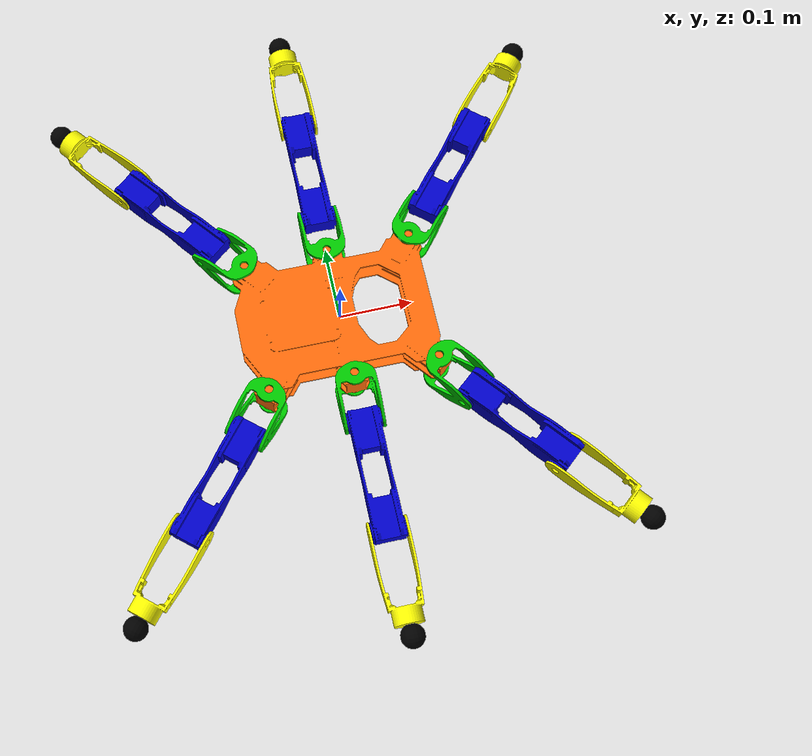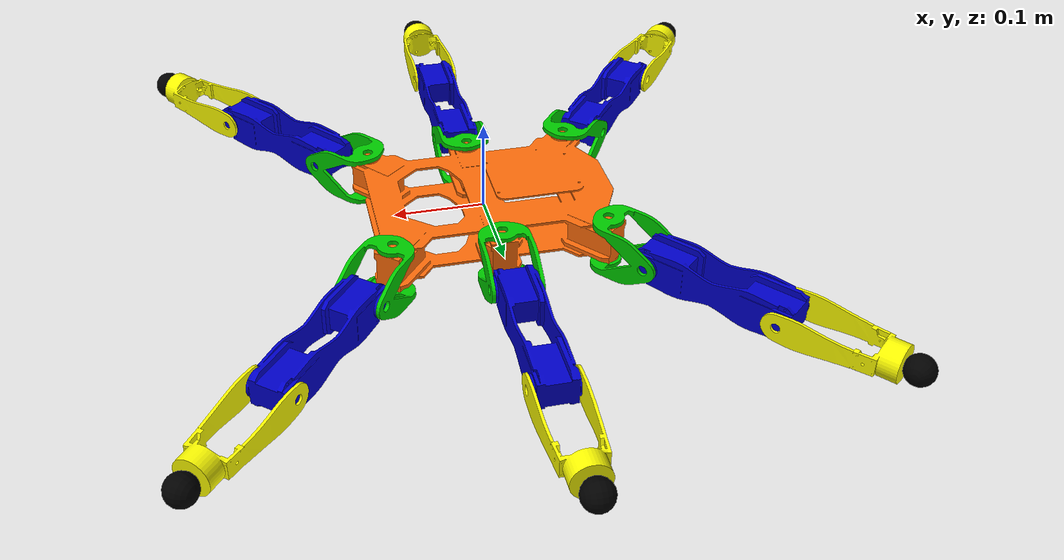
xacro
<?xml version="1.0"?>
<robot xmlns:xacro="http://www.ros.org/wiki/xacro" name="corin">

	<!-- The following included files set up definitions of parts of the robot body -->
	<xacro:include filename="$(find corin_description)/urdfs/common.xacro"/>
	<xacro:include filename="$(find corin_description)/urdfs/materials.xacro"/>
	<!-- Trunk -->
	<xacro:include filename="$(find corin_description)/urdfs/trunk/trunk_model.xacro"/>

	<!-- Legs -->
	<xacro:include filename="$(find corin_description)/urdfs/leg/leg.xacro"/>

	<!-- Sensors -->
	<xacro:include filename="$(find corin_description)/urdfs/sensors/sensors.xacro"/>

	<!-- generic simulator_gazebo plugins for starting mechanism control, ros time -->
	<xacro:include filename="$(find corin_description)/robots/gazebo.xacro"/>

	<!-- Utilise macros to build robot -->

	<!-- body -->
	<xacro:RobotTrunk name="base">
		<origin xyz="0.0 0.0 0.0" rpy="0 0 0"/>
	</xacro:RobotTrunk>

	<xacro:RobotLeg
		name="lf"
		parent="trunk"
		middle_leg="false"
		load_force_sensors="true">
		<origin xyz="${trunk_x/2} ${trunk_y/2} 0" rpy="0 0 ${50*PI/180}"/>
	</xacro:RobotLeg>

	<xacro:RobotLeg
		name="lm"
		parent="trunk"
		middle_leg="true"
		load_force_sensors="false">
		<origin xyz="0 ${trunk_y/2} 0" rpy="0 0 ${PI/2}"/>
	</xacro:RobotLeg>

	<xacro:RobotLeg
		name="lr"
		parent="trunk"
		middle_leg="false"
		load_force_sensors="false">
		<origin xyz="${-trunk_x/2} ${trunk_y/2} 0" rpy="0 0 ${PI/2+40*PI/180}"/>
	</xacro:RobotLeg>

	<xacro:RobotLeg
		name="rf"
		parent="trunk"
		middle_leg="false"
		load_force_sensors="true">
		<origin xyz="${trunk_x/2} ${-trunk_y/2} 0" rpy="0 0 ${-50*PI/180}"/>
	</xacro:RobotLeg>

	<xacro:RobotLeg
		name="rm"
		parent="trunk"
		middle_leg="true"
		load_force_sensors="false">
		<origin xyz="0 ${-trunk_y/2} 0" rpy="0 0 ${-PI/2}"/>
	</xacro:RobotLeg>

	<xacro:RobotLeg
		name="rr"
		parent="trunk"
		middle_leg="false"
		load_force_sensors="false">
		<origin xyz="${-trunk_x/2} ${-trunk_y/2} 0" rpy="0 0 ${-PI/2-40*PI/180}"/>
	</xacro:RobotLeg>

	<!-- Sensors -->

	<xacro:IMU
		parent="trunk"
		imu_name="base_imu"
		imu_topic="base/data"
		imu_service="trunk/service"
		freq_rate="500">
		<origin xyz="0 0 0.0" rpy="0 0 0"/>
	</xacro:IMU>

</robot>

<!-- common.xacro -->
<robot xmlns:xacro="http://www.ros.org/wiki/xacro" name="corin">

	<xacro:property name="PI" value="3.1415926535897931"/>

	<!-- standard distances -->
	<xacro:property name="trunk_x" value="0.23"/> 		<!-- distance between front & back  joints -->
	<xacro:property name="trunk_y" value="0.18"/> 		<!-- distance between left  & right joints -->
	<xacro:property name="trunk_z" value="0.07"/>

	<!--  Joint parameters -->
	<xacro:property name="MX64_damping"   value="0.15" /> 					<!-- real: 0.2 		-->
	<xacro:property name="MX64_effort"    value="2.85" /> 					<!-- real: 2.85 Nm 	-->
	<xacro:property name="MX64_velocity"  value="5.23" />

	<xacro:property name="cox_joint_lim" value="1.00" />	<!-- 57deg -->
	<xacro:property name="cxm_joint_lim" value="0.84" />	<!-- 48deg -->
	<xacro:property name="fem_joint_lim" value="2.22" />	<!-- 127deg -->
	<xacro:property name="tib_joint_lim" value="2.79" />

	<!-- Inertial values -->
	<!-- Trunk  -->
	<xacro:property name="xcom_trunk" value="0.0"/>
	<xacro:property name="ycom_trunk" value="0.0"/>
	<xacro:property name="zcom_trunk" value="0.0"/>
	<xacro:property name="m_trunk" 	  value="1.58"/> <!-- initially 1.5 -->
	<xacro:property name="ixx_trunk"  value="${ (m_trunk/12)*(trunk_y*trunk_y + trunk_z*trunk_z) } "/>
	<xacro:property name="iyy_trunk"  value="${ (m_trunk/12)*(trunk_x*trunk_x + trunk_z*trunk_z) } "/>
	<xacro:property name="izz_trunk"  value="${ (m_trunk/12)*(trunk_y*trunk_y + trunk_x*trunk_x) } "/>
	<xacro:property name="ixy_trunk"  value="0.0"/>
	<xacro:property name="ixz_trunk"  value="0.0"/>
	<xacro:property name="iyz_trunk"  value="0.0"/>

	<!-- Coxa assembly -->
	<xacro:property name="coxa_l"     value="0.06"  />
	<xacro:property name="coxa_w"     value="0.06"  />
	<xacro:property name="coxa_d"     value="0.055" />
	<xacro:property name="coxa_cl"    value="0.03" />
	<xacro:property name="coxa_com_x" value="0.02471"  />
	<xacro:property name="coxa_com_y" value="0"  />
	<xacro:property name="coxa_com_z" value="0"  />
	<xacro:property name="coxa_m"     value="0.0406" />
	<xacro:property name="coxa_i_xx"  value="0.000038"  />
	<xacro:property name="coxa_i_xy"  value="0.0"  />
	<xacro:property name="coxa_i_xz"  value="0.0"  />
	<xacro:property name="coxa_i_yy"  value="0.000038"  />
	<xacro:property name="coxa_i_yz"  value="0.0"  />
	<xacro:property name="coxa_i_zz"  value="0.000040"  />

	<!-- Femur assembly -->
	<xacro:property name="femur_l"     value="0.15" />
	<xacro:property name="femur_w"     value="0.04" />
	<xacro:property name="femur_d"     value="0.04" />
	<xacro:property name="femur_cl"    value="0.15" />
	<xacro:property name="femur_com_x" value="0.075"  />
	<xacro:property name="femur_com_y" value="0"  />
	<xacro:property name="femur_com_z" value="0"  />
	<xacro:property name="femur_m"     value="0.35" />
	<xacro:property name="femur_i_xx"  value="0.000014"  />
	<xacro:property name="femur_i_xy"  value="0"  />
	<xacro:property name="femur_i_xz"  value="0"  />
	<xacro:property name="femur_i_yy"  value="0.000047"  />
	<xacro:property name="femur_i_yz"  value="0"  />
	<xacro:property name="femur_i_zz"  value="0.000051"  />

	<!--  Tibia assembly -->
	<xacro:property name="tibia_l" value="0.134" />
	<xacro:property name="tibia_w" value="0.04" />
	<xacro:property name="tibia_d" value="0.025" />
	<xacro:property name="tibia_cl" value="0.06" />
	<xacro:property name="tibia_com_x" value="0.0887"  	/>
	<xacro:property name="tibia_com_y" value="0"  		/>
	<xacro:property name="tibia_com_z" value="0"  		/>
	<xacro:property name="tibia_m"     value="0.076" 	/>
	<xacro:property name="tibia_i_xx"  value="0.000025" />
	<xacro:property name="tibia_i_xy"  value="0"  		/>
	<xacro:property name="tibia_i_xz"  value="0"  		/>
	<xacro:property name="tibia_i_yy"  value="0.000105" />
	<xacro:property name="tibia_i_yz"  value="0"  		/>
	<xacro:property name="tibia_i_zz"  value="0.000117"  />

	<!-- Foot -->
	<xacro:property name="foot_r" value="0.016"   />
	<xacro:property name="foot_m" value="0.040"   />
	<xacro:property name="foot_I" value="0.000004" />
	<!-- Rectangular box: m*(a^2 + b^2)/12 -->
</robot>

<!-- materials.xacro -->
<robot>

  <material name="black">
    <color rgba="0.0 0.0 0.0 1.0"/>
  </material>

  <material name="blue">
    <color rgba="0.0 0.0 0.8 1.0"/>
  </material>

  <material name="brown">
    <color rgba="${222/255} ${207/255} ${195/255} 1.0"/>
  </material>

  <material name="colli">
    <color rgba="${255/255} ${108/255} ${10/255} 0.7" />
  </material>

  <material name="green">
    <color rgba="0.0 0.8 0.0 1.0"/>
  </material>

  <material name="grey">
    <color rgba="0.2 0.2 0.2 1.0"/>
  </material>

  <material name="grey1">
    <color rgba="${224/255} ${224/255} ${224/255} 1.0"/>
  </material>

  <material name="orange">
    <color rgba="${255/255} ${108/255} ${10/255} 1.0"/>
  </material>

  <material name="red">
    <color rgba="0.8 0.0 0.0 1.0"/>
  </material>

  <material name="transparent">
    <color rgba="0 0 0 0" />
  </material>

  <material name="turquoise">
    <color rgba="0 ${206/255} ${209/255} 1.0" />
  </material>

  <material name="white">
    <color rgba="1.0 1.0 1.0 1.0"/>
  </material>

  <material name="yellow">
    <color rgba="1 1 0 1" />
   </material>

</robot>

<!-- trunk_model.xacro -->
<robot xmlns:xacro="http://www.ros.org/wiki/xacro" name="corin">

	<!-- Things that are needed only for Gazebo (not the physical robot). These include sensor and controller plugin specifications -->
	<xacro:include filename="$(find corin_description)/urdfs/trunk/trunk.gazebo.xacro"/>

	<!-- ================================ Trunk ================================ -->

	<xacro:macro name="RobotTrunk" params="name *origin">
		<!-- Floating-base Joint -->
		<joint name="floating_base" type="fixed">
			<axis xyz="0 0 1"/>
			<!-- origin remains zero as body_dummy same dimensions as body -->
			<xacro:insert_block name="origin"/>
			<parent link="${name}_link"/>
			<child link="trunk"/>
		</joint>

		<!-- Floating Link  -->
		<link name="${name}_link">
			<visual>
				<geometry>
					<cylinder length="0.01" radius="0.01"/>
				</geometry>
			</visual>
		</link>

		<!-- Trunk link -->
		<link name="trunk">
			<inertial>
				<origin xyz="${xcom_trunk} ${ycom_trunk} ${zcom_trunk}"/>
				<mass value="${m_trunk}"/>
				<inertia ixx="${ixx_trunk}" iyy="${iyy_trunk}" izz="${izz_trunk}"
						 ixy="${ixy_trunk}" ixz="${ixz_trunk}" iyz="${iyz_trunk}"/>
			</inertial>

			<visual>
				<geometry>
					<mesh filename="package://corin_description/meshes/Body.STL" scale="1 1 1"/>
				</geometry>
				<material name="orange"/>
			</visual>

			<collision>
				<geometry>
					<mesh filename="package://corin_description/meshes/Body_collision.STL" scale="1 1 1"/>
				</geometry>
				<material name="colli"/>
			</collision>
		</link>

		<!-- Extensions -->
		<xacro:trunk_gazebo name="trunk"/>
	</xacro:macro>

</robot>

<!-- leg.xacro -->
<robot xmlns:xacro="http://www.ros.org/wiki/xacro" name="corin">

	<!-- Things that are needed only for Gazebo (not the physical robot). These include sensor and controller plugin specifications -->
	<xacro:include filename="$(find corin_description)/urdfs/leg/leg.transmission.xacro"/>
	<xacro:include filename="$(find corin_description)/urdfs/leg/leg.gazebo.xacro"/>

	<!-- ================================== Leg ================================== -->
	<!-- The xacro macro xacro:corin_leg contains: hip assembly, upper and lower leg -->
	<xacro:macro name="RobotLeg" params="name parent middle_leg *origin load_force_sensors">
		<!-- Joints -->
		<!-- Coxa joint -->
		<joint name="${name}_q1_joint" type="revolute">
			<xacro:insert_block name="origin"/>
			<parent link="${parent}"/>
			<child  link="${name}_hipassembly"/>
			<axis xyz="0 0 1"/>

			<xacro:if value="${middle_leg}"> 	<!-- overwrite joint limits for middle legs-->
				<limit effort="${MX64_effort}" velocity="${MX64_velocity}" lower="${-cxm_joint_lim}" upper="${cxm_joint_lim}"/>
			</xacro:if>
			<xacro:unless value="${middle_leg}"> 	<!-- overwrite joint limits for middle legs-->
				<limit effort="${MX64_effort}" velocity="${MX64_velocity}" lower="${-cox_joint_lim}" upper="${cox_joint_lim}"/>
			</xacro:unless>
			<dynamics damping="${MX64_damping}" friction="0" />
		</joint>
		<!-- Upper leg joint -->
		<joint name="${name}_q2_joint" type="revolute">
			<origin xyz="${coxa_l} 0 0" rpy="${pi/2} 0 0"/>
			<parent link="${name}_hipassembly"/>
			<child  link="${name}_upperleg"/>
			<axis xyz="0 0 1"/>
			<limit effort="${MX64_effort}" velocity="${MX64_velocity}" lower="${-fem_joint_lim}" upper="${fem_joint_lim}"/>
			<dynamics damping="${MX64_damping}" friction="0" />
		</joint>
		<!-- Lower leg joint -->
		<joint name="${name}_q3_joint" type="revolute">
			<origin xyz="${femur_l} 0 0" rpy="0 0 0"/>
			<parent link="${name}_upperleg"/>
			<child  link="${name}_lowerleg"/>
			<axis xyz="0 0 1"/>
			<limit effort="${MX64_effort}" velocity="${MX64_velocity}" lower="${-tib_joint_lim}" upper="${tib_joint_lim}"/>
			<dynamics damping="${MX64_damping}" friction="0" />

		</joint>
		<!-- Foot joint -->
		<joint name="${name}_foot_joint" type="fixed">
			<origin xyz="${tibia_l} 0 0" rpy="0 0 0"/>
			<parent link="${name}_lowerleg"/>
			<child  link="${name}_foot"/>
		</joint>

		<!-- Links -->
		<!-- Hip assembly link -->
		<link name="${name}_hipassembly">
			<visual>
				<origin rpy="0 0 0" xyz="0 0 0"/>
			      <geometry>
			        <mesh filename="package://corin_description/meshes/Coxa.STL" scale="1 1 1"/>
			      </geometry>
		      	<material name="green"/>
		    </visual>

		    <collision>
		    	<origin rpy="0 0 0" xyz="0 0 0"/>
			    <geometry>
			      <mesh filename="package://corin_description/meshes/Coxa_collision.STL" scale="1 1 1"/>
			    </geometry>
		      <material name="orange"/>
		    </collision>

		    <inertial>
		    	<origin xyz="${coxa_com_x} ${coxa_com_y} ${coxa_com_z}"/>
		      	<mass value="${coxa_m}"/>
		      	<inertia ixx="${coxa_i_xx}" ixy="${coxa_i_xy}" ixz="${coxa_i_xz}" iyy="${coxa_i_yy}" iyz="${coxa_i_yz}" izz="${coxa_i_zz}"/>
		    </inertial>
		  </link>

		<!-- Upper leg link -->
		<link name="${name}_upperleg">
			<visual>
		      	<geometry>
		        	<mesh filename="package://corin_description/meshes/Femur.STL" scale="1 1 1"/>
		      	</geometry>
		      	<origin xyz="0 0 0" rpy="0 0 0"/>
		      	<material name="blue"/>
		    </visual>

		    <collision>
		      	<geometry>
		        	<box size= "${femur_cl} ${femur_w} ${femur_d}"/>
		      	</geometry>
		      	<origin xyz="0.075 0 0" rpy="0 0 0"/>
		      	<material name="colli"/>
		    </collision>

		    <inertial>
		      	<mass value="${femur_m}"/>
		      	<inertia ixx="${femur_i_xx}" ixy="${femur_i_xy}" ixz="${femur_i_xz}" iyy="${femur_i_yy}" iyz="${femur_i_yz}" izz="${femur_i_zz}"/>
		      	<origin xyz="${femur_com_x} ${femur_com_y} ${femur_com_z}"/>
		    </inertial>
		</link>

		<!-- Lower leg link -->
		<link name="${name}_lowerleg">
			<visual>
		      	<geometry>
		      		<mesh filename="package://corin_description/meshes/Tibia.STL" scale="1 1 1"/>
		      	</geometry>
		      	<origin xyz="0 0 0" rpy="${pi/2} 0 0"/>
		      	<material name="yellow"/>
		    </visual>

		    <collision>
		      	<geometry>
							<mesh filename="package://corin_description/meshes/Tibia_collision.STL" scale="1 1 1"/>
		      	</geometry>
		      	<origin xyz="0.0 0 0" rpy="${pi/2} 0 0"/>
		      	<material name="colli"/>
		    </collision>

		    <inertial>
		      	<mass value="${tibia_m}"/>
		      	<inertia ixx="${tibia_i_xx}" ixy="${tibia_i_xy}" ixz="${tibia_i_xz}" iyy="${tibia_i_yy}" iyz="${tibia_i_yz}" izz="${tibia_i_zz}"/>
		      	<origin xyz="${tibia_com_x} ${tibia_com_y} ${tibia_com_z}"/>
		    </inertial>
		</link>

		<!-- Foot link -->
		<link name="${name}_foot">
			<visual>
		      	<geometry>
		        	<sphere radius="${foot_r}"/>
		      	</geometry>
		      	<origin xyz="0 0 0" rpy="0 0 0"/>
		      	<material name="black"/>
		    </visual>

		    <collision>
		      	<geometry>
		        	<sphere radius="${foot_r}"/>
		      	</geometry>
		      	<origin xyz="0 0 0" rpy="0 0 0"/>
		      	<material name="colli"/>
		    </collision>

		    <inertial>
		      	<mass value="${foot_m}"/>
		      	<inertia ixx="${foot_I}" ixy="0" ixz="0" iyy="${foot_I}" iyz="0" izz="${foot_I}" />
		      	<origin xyz="0 0 0"/>
		    </inertial>
		</link>

		<!-- Extensions -->
		<xacro:leg_transmission name="${name}"/>
		<xacro:leg_gazebo name="${name}" load_force_sensors="${load_force_sensors}"/>
	</xacro:macro>

</robot>

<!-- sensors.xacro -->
<robot xmlns:xacro="http://www.ros.org/wiki/xacro" name="corin">

	<!-- #############  IMU Sensor  ############# -->
	<xacro:macro name="IMU" params="parent imu_name imu_topic imu_service freq_rate *origin">
        <!-- Joint -->
        <joint name="${imu_name}_joint" type="fixed">
            <xacro:insert_block name="origin"/>
            <parent link="${parent}" />
            <child link="${imu_name}"/>
        </joint>

        <!-- Link -->
        <link name="${imu_name}">
            <inertial>
                <origin xyz="-0.0000  0.0000  0.000"/>
                <mass value="0.0000"/>
                <inertia ixx="0.0" iyy="0.0" izz="0.0" ixy="0.0" ixz="0.0" iyz="0.0"/>
            </inertial>
            <visual>
                <origin xyz="0.0 0 0.0" rpy="0 0 0"/>
                <geometry>
                    <box size="0.01 0.01 0.01" />
                </geometry>
                <material name="black">
                    <color rgba="0 0 0 0.9"/>
                </material>
            </visual>
						<collision>
								<origin xyz="0.0 0 0.0" rpy="0 0 0"/>
								<geometry>
										<box size="0.01 0.01 0.01" />
								</geometry>
								<material name="black">
										<color rgba="0 0 0 0.9"/>
								</material>
						</collision>
        </link>

        <gazebo reference="${imu_name}">
					<material>Gazebo/Grey</material>
					<gravity>false</gravity>
					<sensor name='IMU' type='imu'>
						<always_on>true</always_on>
						<visualize>true</visualize>
						<topic>__default_topic__</topic>
            <plugin name="imu_plugin" filename="libgazebo_ros_imu_sensor.so">
								<robotNamespace>/corin/imu/</robotNamespace>
								<alwaysOn>true</alwaysOn>
								<gravity>false</gravity>
								<frameName>${imu_name}</frameName>
                <topicName>${imu_topic}</topicName>
                <serviceName>${imu_service}</serviceName>
								<bodyName>${imu_name}</bodyName>
                <updateRateHZ>${freq_rate}</updateRateHZ>
								<gaussianNoise>0</gaussianNoise>
								<xyzOffset>0 0 0</xyzOffset>
    						<rpyOffset>0 0 0</rpyOffset>
            </plugin>
						<pose>0 0 0 0 0 0</pose>
					</sensor>
        </gazebo>

    </xacro:macro>

    <!-- #############  Laser Sensor  ############# -->
    <!-- Noise parameters based on published spec for Hokuyo laser achieving "+-30mm" accuracy at range < 10m. -->
    <!-- A mean of 0.0m and stddev of 0.01m will put 99.7% of samples within 0.03m of the true reading. -->

    <xacro:macro name="LIDAR" params="parent lidar_name lidar_topic update_rate *origin">
        <!-- Joint -->
        <joint name="${lidar_name}_joint" type="fixed">
            <xacro:insert_block name="origin"/>
            <parent link="${parent}" />
            <child link="${lidar_name}"/>
        </joint>

        <!-- Link -->
        <link name="${lidar_name}">
            <inertial>
                <origin xyz="-0.00020  0.00010  0.00110"/>
                <mass value="0.010"/>
                <inertia ixx="0.0" iyy="0.0" izz="0.0" ixy="0.0" ixz="0.0" iyz="0.0"/>
            </inertial>
            <visual>
                <origin xyz="0.0 0 0.0" rpy="0 0 0"/>
                <geometry>
                    <cylinder length="0.01" radius="0.01"/>
                </geometry>
                <material name="black">
                    <color rgba="0 0 0 0.9"/>
                </material>
            </visual>
        </link>

        <gazebo reference="${lidar_name}">
            <material>Gazebo/Blue</material>
            <sensor type="ray" name="head_hokuyo_sensor">
                <pose>0 0 0 0 0 0</pose>
                <visualize>true</visualize>
                <update_rate>${update_rate}</update_rate>
                <ray>
                    <scan>
                        <horizontal>
                            <samples>5</samples>
                            <resolution>1</resolution>
                            <min_angle>-0.009</min_angle>
                            <max_angle>0.009</max_angle>
                        </horizontal>
                    </scan>
                  <range>
                      <min>0.01</min>
                      <max>1.0</max>
                      <resolution>0.005</resolution>
                  </range>
                  <noise>
                      <type>none</type>
                      <mean>0.0</mean>
                      <stddev>0.0</stddev>
                  </noise>
                </ray>

                <plugin name="gazebo_ros_head_hokuyo_controller" filename="libgazebo_ros_laser.so">
                    <robotNamespace>/corin/lidar/</robotNamespace>
                    <alwaysOn>true</alwaysOn>
                    <update_rate>${update_rate}</update_rate>
                    <topicName>${lidar_topic}</topicName>
                    <frameName>${parent}</frameName>
                    <bodyName>${parent}</bodyName>
                </plugin>
            </sensor>
        </gazebo>
    </xacro:macro>

</robot>
